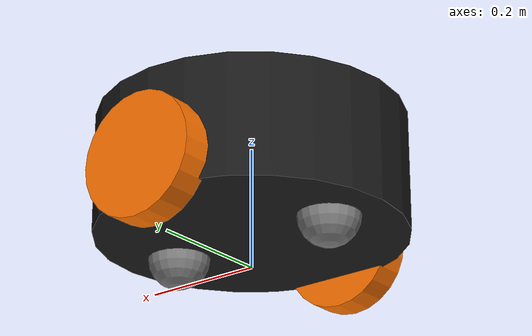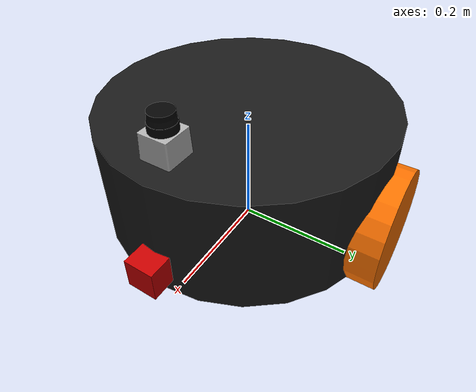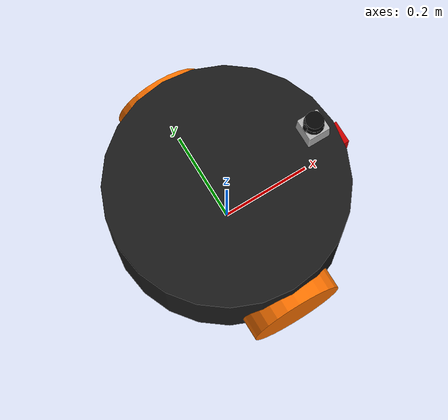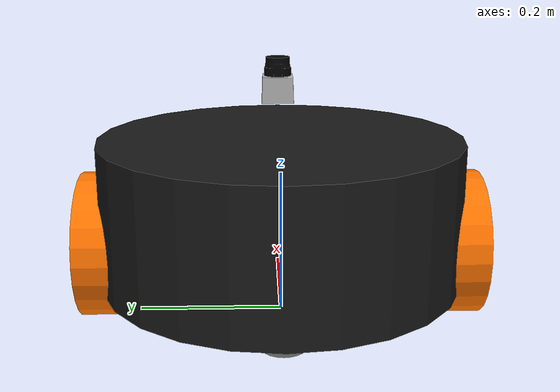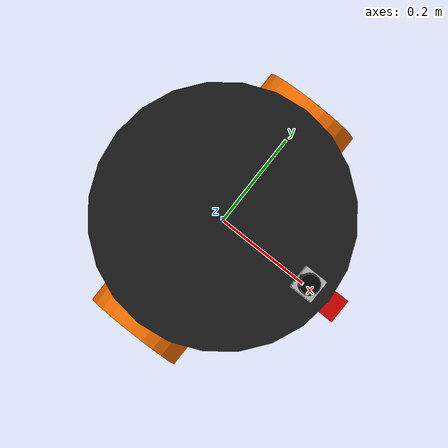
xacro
<?xml version="1.0"?>
<!-- Midge: differential drive robot with a Hokuyo lidar and a camera -->
<robot name="midge" xmlns:xacro="http://www.ros.org/wiki/xacro">

  <xacro:property name="wheel_radius" value="0.1"/>
  <xacro:property name="wheel_separation" value="0.5"/>

  <xacro:include filename="$(find midge_bringup)/urdf/midge.gazebo.xacro"/>

  <material name="black"><color rgba="0.1 0.1 0.1 1"/></material>
  <material name="orange"><color rgba="1.0 0.45 0.0 1"/></material>
  <material name="red"><color rgba="0.8 0.0 0.0 1"/></material>
  <material name="grey"><color rgba="0.5 0.5 0.5 1"/></material>

  <!-- base_footprint lies on the ground, base_link is the chassis centre (wheel axle height) -->
  <link name="base_footprint"/>

  <joint name="base_footprint_joint" type="fixed">
    <origin xyz="0 0 ${wheel_radius}" rpy="0 0 0"/>
    <parent link="base_footprint"/>
    <child link="base_link"/>
  </joint>

  <!-- base_link collisions are left unnamed: sdformat only applies the friction in
       midge.gazebo.xacro to merged collisions that keep their default names -->
  <link name="base_link">
    <inertial>
      <mass value="15.0"/>
      <origin xyz="0 0 0" rpy="0 0 0"/>
      <inertia ixx="0.1" ixy="0" ixz="0" iyy="0.1" iyz="0" izz="0.1"/>
    </inertial>

    <collision>
      <origin xyz="0 0 0.05" rpy="0 0 0"/>
      <geometry><cylinder length="0.2" radius="0.25"/></geometry>
    </collision>
    <visual name="chassis_visual">
      <origin xyz="0 0 0.05" rpy="0 0 0"/>
      <geometry><cylinder length="0.2" radius="0.25"/></geometry>
      <material name="black"/>
    </visual>

    <collision>
      <origin xyz="-0.15 0 -0.05" rpy="0 0 0"/>
      <geometry><sphere radius="0.0499"/></geometry>
    </collision>
    <visual name="back_caster_visual">
      <origin xyz="-0.15 0 -0.05" rpy="0 0 0"/>
      <geometry><sphere radius="0.05"/></geometry>
      <material name="grey"/>
    </visual>

    <collision>
      <origin xyz="0.15 0 -0.05" rpy="0 0 0"/>
      <geometry><sphere radius="0.0499"/></geometry>
    </collision>
    <visual name="front_caster_visual">
      <origin xyz="0.15 0 -0.05" rpy="0 0 0"/>
      <geometry><sphere radius="0.05"/></geometry>
      <material name="grey"/>
    </visual>
  </link>

  <xacro:macro name="wheel" params="side y">
    <joint name="${side}_wheel_hinge" type="continuous">
      <origin xyz="0 ${y} 0" rpy="0 0 0"/>
      <parent link="base_link"/>
      <child link="${side}_wheel"/>
      <axis xyz="0 1 0"/>
      <limit effort="10000" velocity="1000"/>
      <dynamics damping="1.0" friction="1.0"/>
    </joint>

    <link name="${side}_wheel">
      <inertial>
        <mass value="5"/>
        <origin xyz="0 0 0" rpy="0 1.5707 1.5707"/>
        <inertia ixx="0.1" ixy="0" ixz="0" iyy="0.1" iyz="0" izz="0.1"/>
      </inertial>
      <collision>
        <origin xyz="0 0 0" rpy="0 1.5707 1.5707"/>
        <geometry><cylinder radius="${wheel_radius}" length="0.05"/></geometry>
      </collision>
      <visual>
        <origin xyz="0 0 0" rpy="0 1.5707 1.5707"/>
        <geometry><cylinder radius="${wheel_radius}" length="0.05"/></geometry>
        <material name="orange"/>
      </visual>
    </link>
  </xacro:macro>

  <xacro:wheel side="left" y="${wheel_separation / 2}"/>
  <xacro:wheel side="right" y="${-wheel_separation / 2}"/>

  <joint name="camera_joint" type="fixed">
    <origin xyz="0.26 0 0" rpy="0 0 0"/>
    <parent link="base_link"/>
    <child link="camera"/>
  </joint>

  <link name="camera">
    <inertial>
      <mass value="0.1"/>
      <origin xyz="0 0 0" rpy="0 0 0"/>
      <inertia ixx="1e-6" ixy="0" ixz="0" iyy="1e-6" iyz="0" izz="1e-6"/>
    </inertial>
    <collision>
      <origin xyz="0 0 0" rpy="0 0 0"/>
      <geometry><box size="0.05 0.05 0.05"/></geometry>
    </collision>
    <visual>
      <origin xyz="0 0 0" rpy="0 0 0"/>
      <geometry><box size="0.05 0.05 0.05"/></geometry>
      <material name="red"/>
    </visual>
  </link>

  <joint name="hokuyo_joint" type="fixed">
    <origin xyz="0.2 0 0.2" rpy="0 0 0"/>
    <parent link="base_link"/>
    <child link="hokuyo"/>
  </joint>

  <link name="hokuyo">
    <inertial>
      <mass value="1e-5"/>
      <origin xyz="0 0 0" rpy="0 0 0"/>
      <inertia ixx="1e-6" ixy="0" ixz="0" iyy="1e-6" iyz="0" izz="1e-6"/>
    </inertial>
    <collision>
      <origin xyz="0 0 0" rpy="0 0 0"/>
      <geometry><box size="0.1 0.1 0.1"/></geometry>
    </collision>
    <visual>
      <origin xyz="0 0 0" rpy="0 0 0"/>
      <geometry><mesh filename="package://midge_bringup/meshes/hokuyo.dae"/></geometry>
    </visual>
  </link>

</robot>
